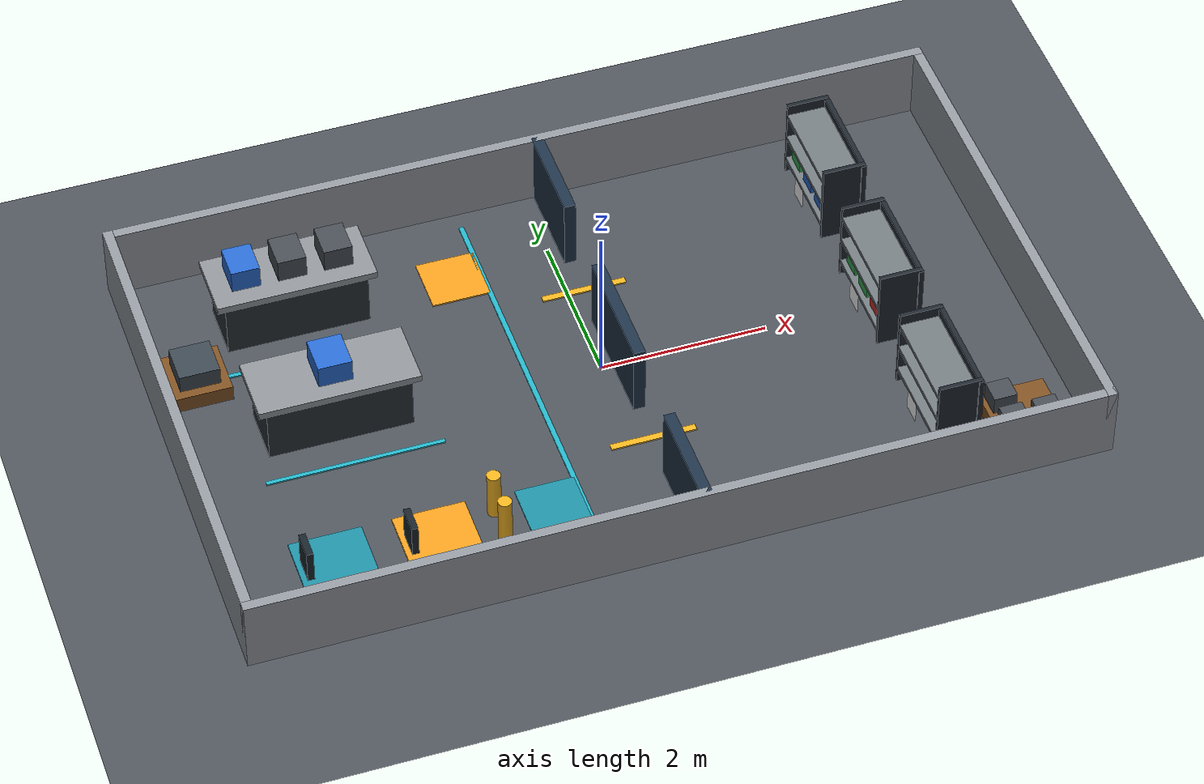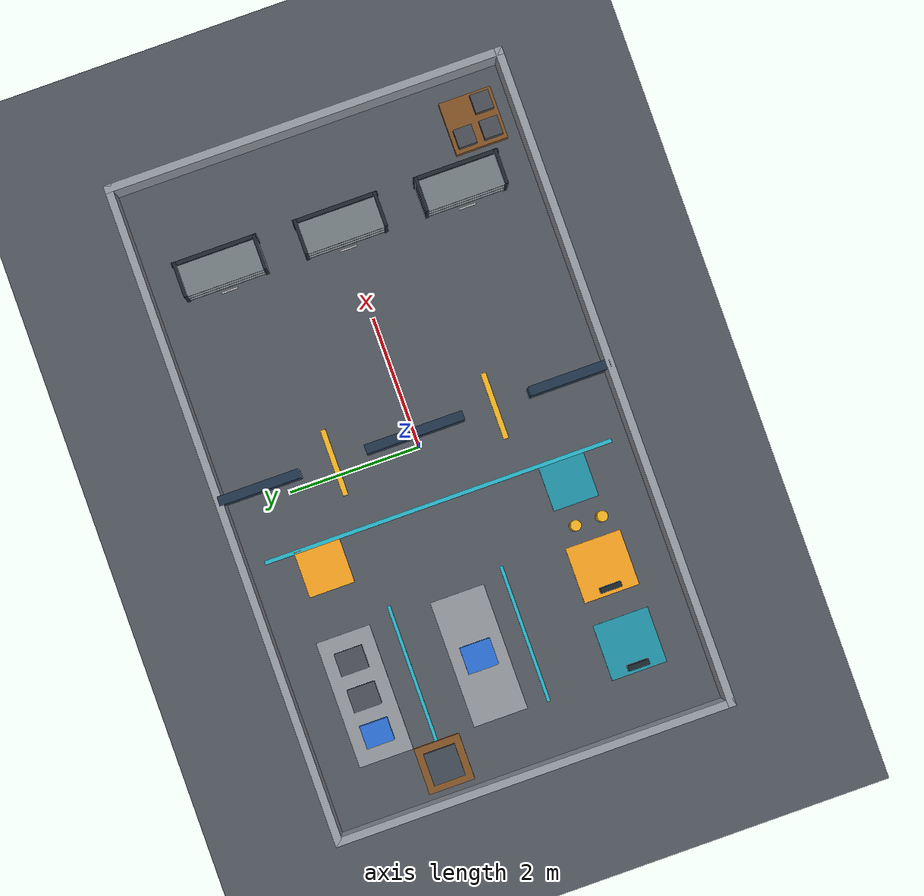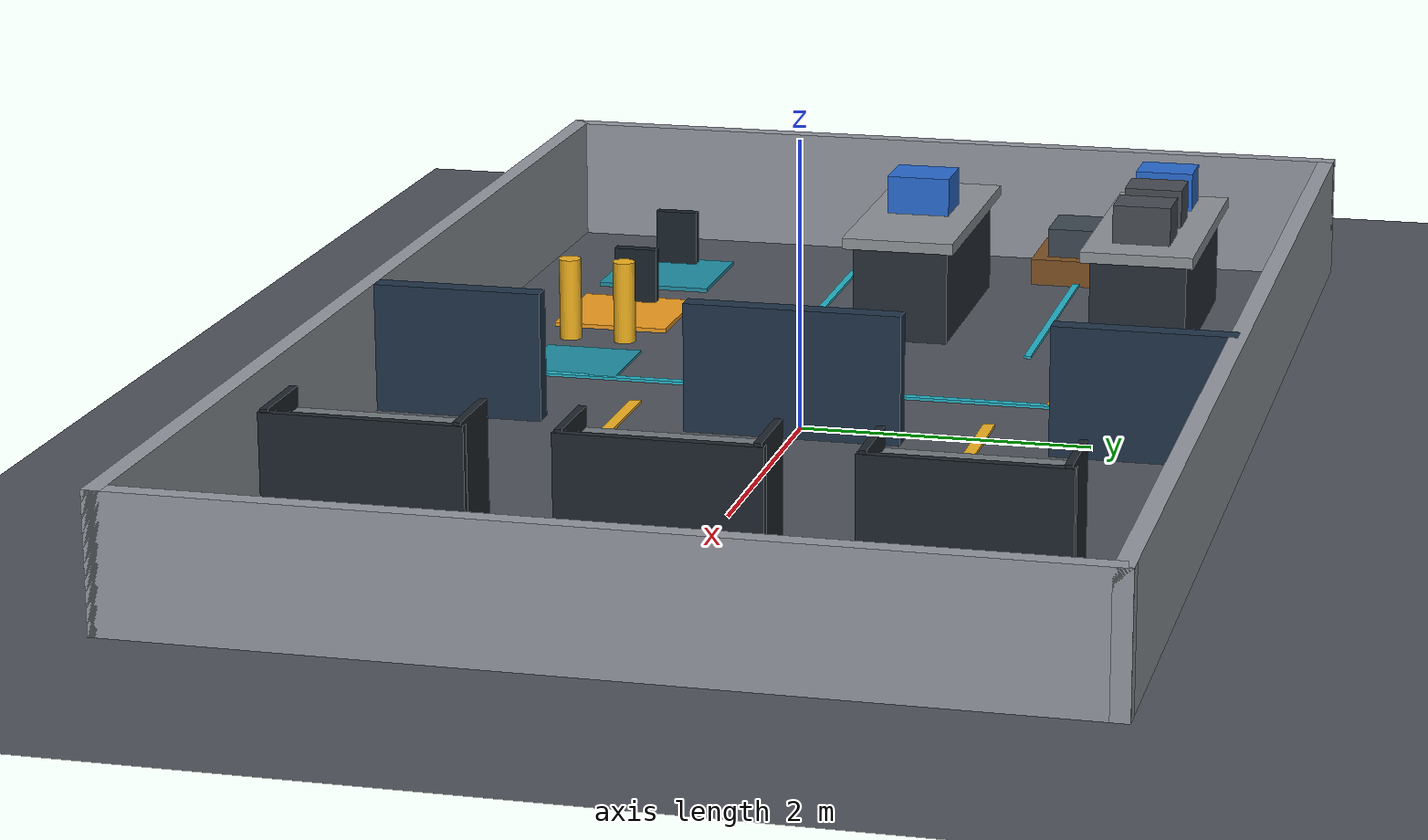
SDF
<?xml version="1.0" ?>
<sdf version="1.9">
  <world name="warehouse">

    <physics name="default_physics" type="ignored">
      <max_step_size>0.001</max_step_size>
      <real_time_factor>1.0</real_time_factor>
    </physics>

    <plugin filename="gz-sim-physics-system"
            name="gz::sim::systems::Physics"/>
    <plugin filename="gz-sim-user-commands-system"
            name="gz::sim::systems::UserCommands"/>
    <plugin filename="gz-sim-scene-broadcaster-system"
            name="gz::sim::systems::SceneBroadcaster"/>
    <plugin filename="gz-sim-sensors-system"
            name="gz::sim::systems::Sensors">
      <render_engine>ogre2</render_engine>
    </plugin>

    <scene>
      <background>0.09 0.11 0.14 1</background>
      <ambient>0.45 0.45 0.45 1</ambient>
    </scene>

    <light type="directional" name="sun">
      <pose>0 0 10 0 0 0</pose>
      <cast_shadows>true</cast_shadows>
      <diffuse>0.85 0.85 0.85 1</diffuse>
      <direction>-0.5 0.2 -0.9</direction>
    </light>

    <model name="ground_plane">
      <static>true</static>
      <link name="link">
        <collision name="collision">
          <geometry>
            <plane>
              <normal>0 0 1</normal>
              <size>10 6</size>
            </plane>
          </geometry>
        </collision>

        <visual name="visual">
          <geometry>
            <plane>
              <normal>0 0 1</normal>
              <size>10 6</size>
            </plane>
          </geometry>
          <material>
            <diffuse>0.31 0.33 0.36 1</diffuse>
          </material>
        </visual>
      </link>
    </model>

    <!-- Outer walls and centre divider with two doors -->
    <model name="warehouse_shell">
      <static>true</static>
      <link name="link">

        <collision name="north_collision">
          <pose>0 3 0.45 0 0 0</pose>
          <geometry><box><size>10.12 0.12 0.90</size></box></geometry>
        </collision>
        <visual name="north_visual">
          <pose>0 3 0.45 0 0 0</pose>
          <geometry><box><size>10.12 0.12 0.90</size></box></geometry>
          <material><diffuse>0.58 0.60 0.63 1</diffuse></material>
        </visual>

        <collision name="south_collision">
          <pose>0 -3 0.45 0 0 0</pose>
          <geometry><box><size>10.12 0.12 0.90</size></box></geometry>
        </collision>
        <visual name="south_visual">
          <pose>0 -3 0.45 0 0 0</pose>
          <geometry><box><size>10.12 0.12 0.90</size></box></geometry>
          <material><diffuse>0.58 0.60 0.63 1</diffuse></material>
        </visual>

        <collision name="east_collision">
          <pose>5 0 0.45 0 0 0</pose>
          <geometry><box><size>0.12 6.12 0.90</size></box></geometry>
        </collision>
        <visual name="east_visual">
          <pose>5 0 0.45 0 0 0</pose>
          <geometry><box><size>0.12 6.12 0.90</size></box></geometry>
          <material><diffuse>0.58 0.60 0.63 1</diffuse></material>
        </visual>

        <collision name="west_collision">
          <pose>-5 0 0.45 0 0 0</pose>
          <geometry><box><size>0.12 6.12 0.90</size></box></geometry>
        </collision>
        <visual name="west_visual">
          <pose>-5 0 0.45 0 0 0</pose>
          <geometry><box><size>0.12 6.12 0.90</size></box></geometry>
          <material><diffuse>0.58 0.60 0.63 1</diffuse></material>
        </visual>

        <collision name="divider_north_collision">
          <pose>0.20 2.38 0.45 0 0 0</pose>
          <geometry><box><size>0.14 1.24 0.90</size></box></geometry>
        </collision>
        <visual name="divider_north_visual">
          <pose>0.20 2.38 0.45 0 0 0</pose>
          <geometry><box><size>0.14 1.24 0.90</size></box></geometry>
          <material><diffuse>0.12 0.20 0.28 1</diffuse></material>
        </visual>

        <collision name="divider_centre_collision">
          <pose>0.20 0 0.45 0 0 0</pose>
          <geometry><box><size>0.14 1.50 0.90</size></box></geometry>
        </collision>
        <visual name="divider_centre_visual">
          <pose>0.20 0 0.45 0 0 0</pose>
          <geometry><box><size>0.14 1.50 0.90</size></box></geometry>
          <material><diffuse>0.12 0.20 0.28 1</diffuse></material>
        </visual>

        <collision name="divider_south_collision">
          <pose>0.20 -2.38 0.45 0 0 0</pose>
          <geometry><box><size>0.14 1.24 0.90</size></box></geometry>
        </collision>
        <visual name="divider_south_visual">
          <pose>0.20 -2.38 0.45 0 0 0</pose>
          <geometry><box><size>0.14 1.24 0.90</size></box></geometry>
          <material><diffuse>0.12 0.20 0.28 1</diffuse></material>
        </visual>
      </link>
    </model>

    <!-- Floor markings -->
    <model name="floor_markings">
      <static>true</static>
      <link name="link">
        <visual name="service_lane">
          <pose>-0.85 0 0.012 0 0 0</pose>
          <geometry><box><size>0.06 5.40 0.02</size></box></geometry>
          <material><diffuse>0.14 0.70 0.78 1</diffuse></material>
        </visual>

        <visual name="upper_door_mark">
          <pose>0.20 1.25 0.012 0 0 0</pose>
          <geometry><box><size>1.02 0.08 0.02</size></box></geometry>
          <material><diffuse>0.95 0.70 0.12 1</diffuse></material>
        </visual>

        <visual name="lower_door_mark">
          <pose>0.20 -1.25 0.012 0 0 0</pose>
          <geometry><box><size>1.02 0.08 0.02</size></box></geometry>
          <material><diffuse>0.95 0.70 0.12 1</diffuse></material>
        </visual>

        <visual name="receiving_zone_mark">
          <pose>-3.10 1.20 0.012 0 0 0</pose>
          <geometry><box><size>2.10 0.05 0.02</size></box></geometry>
          <material><diffuse>0.14 0.70 0.78 1</diffuse></material>
        </visual>

        <visual name="packout_zone_mark">
          <pose>-3.10 -0.55 0.012 0 0 0</pose>
          <geometry><box><size>2.10 0.05 0.02</size></box></geometry>
          <material><diffuse>0.14 0.70 0.78 1</diffuse></material>
        </visual>
      </link>
    </model>

    <!-- Receiving -->
    <model name="receiving_station">
      <static>true</static>
      <pose>-3.15 1.95 0 0 0 0</pose>
      <link name="link">
        <collision name="base_collision">
          <pose>0 0 0.35 0 0 0</pose>
          <geometry><box><size>1.70 0.70 0.70</size></box></geometry>
        </collision>

        <visual name="base">
          <pose>0 0 0.35 0 0 0</pose>
          <geometry><box><size>1.70 0.70 0.70</size></box></geometry>
          <material><diffuse>0.15 0.18 0.21 1</diffuse></material>
        </visual>

        <visual name="top">
          <pose>0 0 0.74 0 0 0</pose>
          <geometry><box><size>1.90 0.82 0.08</size></box></geometry>
          <material><diffuse>0.56 0.58 0.60 1</diffuse></material>
        </visual>

        <visual name="inbound_tote_blue">
          <pose>-0.55 0 0.94 0 0 0</pose>
          <geometry><box><size>0.34 0.42 0.28</size></box></geometry>
          <material><diffuse>0.16 0.42 0.82 1</diffuse></material>
        </visual>

        <visual name="inbound_tote_gray_1">
          <pose>0 0 0.94 0 0 0</pose>
          <geometry><box><size>0.34 0.42 0.28</size></box></geometry>
          <material><diffuse>0.28 0.30 0.33 1</diffuse></material>
        </visual>

        <visual name="inbound_tote_gray_2">
          <pose>0.55 0 0.94 0 0 0</pose>
          <geometry><box><size>0.34 0.42 0.28</size></box></geometry>
          <material><diffuse>0.28 0.30 0.33 1</diffuse></material>
        </visual>
      </link>
    </model>

    <model name="pallet_receiving_area">
      <static>true</static>
      <pose>-4.49 1.20 0 0 0 0</pose>
      <link name="link">
        <collision name="pallet_collision">
          <pose>0 0 0.10 0 0 0</pose>
          <geometry><box><size>0.70 0.70 0.20</size></box></geometry>
        </collision>

        <visual name="pallet">
          <pose>0 0 0.10 0 0 0</pose>
          <geometry><box><size>0.70 0.70 0.20</size></box></geometry>
          <material><diffuse>0.50 0.32 0.14 1</diffuse></material>
        </visual>

        <visual name="tote">
          <pose>0 0 0.31 0 0 0</pose>
          <geometry><box><size>0.48 0.48 0.22</size></box></geometry>
          <material><diffuse>0.24 0.28 0.32 1</diffuse></material>
        </visual>
      </link>
    </model>

    <!-- Packout -->
    <model name="packout_station">
      <static>true</static>
      <pose>-3.15 0.20 0 0 0 0</pose>
      <link name="link">
        <collision name="base_collision">
          <pose>0 0 0.35 0 0 0</pose>
          <geometry><box><size>1.70 0.70 0.70</size></box></geometry>
        </collision>

        <visual name="base">
          <pose>0 0 0.35 0 0 0</pose>
          <geometry><box><size>1.70 0.70 0.70</size></box></geometry>
          <material><diffuse>0.15 0.18 0.21 1</diffuse></material>
        </visual>

        <visual name="top">
          <pose>0 0 0.74 0 0 0</pose>
          <geometry><box><size>1.90 0.82 0.08</size></box></geometry>
          <material><diffuse>0.56 0.58 0.60 1</diffuse></material>
        </visual>

        <visual name="outbound_tote">
          <pose>0 0 0.94 0 0 0</pose>
          <geometry><box><size>0.40 0.46 0.28</size></box></geometry>
          <material><diffuse>0.16 0.42 0.82 1</diffuse></material>
        </visual>
      </link>
    </model>

    <!-- Charging bays -->
    <model name="scout_charge_bay">
      <static>true</static>
      <pose>-3.75 -1.95 0 0 0 0</pose>
      <link name="link">
        <visual name="pad">
          <pose>0 0 0.015 0 0 0</pose>
          <geometry><box><size>0.85 0.85 0.03</size></box></geometry>
          <material><diffuse>0.12 0.56 0.64 1</diffuse></material>
        </visual>

        <collision name="post_collision">
          <pose>-0.32 0 0.22 0 0 0</pose>
          <geometry><box><size>0.08 0.32 0.44</size></box></geometry>
        </collision>

        <visual name="post">
          <pose>-0.32 0 0.22 0 0 0</pose>
          <geometry><box><size>0.08 0.32 0.44</size></box></geometry>
          <material><diffuse>0.10 0.14 0.17 1</diffuse></material>
        </visual>
      </link>
    </model>

    <model name="service_charge_bay">
      <static>true</static>
      <pose>-2.55 -1.95 0 0 0 0</pose>
      <link name="link">
        <visual name="pad">
          <pose>0 0 0.015 0 0 0</pose>
          <geometry><box><size>0.85 0.85 0.03</size></box></geometry>
          <material><diffuse>0.95 0.62 0.12 1</diffuse></material>
        </visual>

        <collision name="post_collision">
          <pose>-0.32 0 0.22 0 0 0</pose>
          <geometry><box><size>0.08 0.32 0.44</size></box></geometry>
        </collision>

        <visual name="post">
          <pose>-0.32 0 0.22 0 0 0</pose>
          <geometry><box><size>0.08 0.32 0.44</size></box></geometry>
          <material><diffuse>0.10 0.14 0.17 1</diffuse></material>
        </visual>
      </link>
    </model>

    <!-- Shelf 3: two blue totes, one green tote -->
    <model name="shelf_3">
      <static>true</static>
      <pose>3.40 1.85 0 0 0 0</pose>
      <link name="link">
        <collision name="rack_collision">
          <pose>0 0 0.50 0 0 0</pose>
          <geometry><box><size>0.58 1.30 1.00</size></box></geometry>
        </collision>

        <visual name="back_panel">
          <pose>0.24 0 0.50 0 0 0</pose>
          <geometry><box><size>0.06 1.30 1.00</size></box></geometry>
          <material><diffuse>0.12 0.15 0.18 1</diffuse></material>
        </visual>

        <visual name="left_upright">
          <pose>0 -0.61 0.50 0 0 0</pose>
          <geometry><box><size>0.52 0.05 1.04</size></box></geometry>
          <material><diffuse>0.12 0.15 0.18 1</diffuse></material>
        </visual>

        <visual name="right_upright">
          <pose>0 0.61 0.50 0 0 0</pose>
          <geometry><box><size>0.52 0.05 1.04</size></box></geometry>
          <material><diffuse>0.12 0.15 0.18 1</diffuse></material>
        </visual>

        <visual name="bottom_board">
          <pose>0 0 0.18 0 0 0</pose>
          <geometry><box><size>0.52 1.20 0.05</size></box></geometry>
          <material><diffuse>0.45 0.48 0.50 1</diffuse></material>
        </visual>

        <visual name="middle_board">
          <pose>0 0 0.52 0 0 0</pose>
          <geometry><box><size>0.52 1.20 0.05</size></box></geometry>
          <material><diffuse>0.45 0.48 0.50 1</diffuse></material>
        </visual>

        <visual name="top_board">
          <pose>0 0 0.86 0 0 0</pose>
          <geometry><box><size>0.52 1.20 0.05</size></box></geometry>
          <material><diffuse>0.45 0.48 0.50 1</diffuse></material>
        </visual>

        <visual name="blue_tote_1">
          <pose>-0.06 -0.38 0.37 0 0 0</pose>
          <geometry><box><size>0.30 0.26 0.26</size></box></geometry>
          <material><diffuse>0.16 0.42 0.82 1</diffuse></material>
        </visual>

        <visual name="blue_tote_2">
          <pose>-0.06 0 0.37 0 0 0</pose>
          <geometry><box><size>0.30 0.26 0.26</size></box></geometry>
          <material><diffuse>0.16 0.42 0.82 1</diffuse></material>
        </visual>

        <visual name="green_tote">
          <pose>-0.06 0.38 0.37 0 0 0</pose>
          <geometry><box><size>0.30 0.26 0.26</size></box></geometry>
          <material><diffuse>0.20 0.66 0.32 1</diffuse></material>
        </visual>
      </link>
    </model>

    <!-- Shelf 2: one red tote, two green totes -->
    <model name="shelf_2">
      <static>true</static>
      <pose>3.40 0 0 0 0 0</pose>
      <link name="link">
        <collision name="rack_collision">
          <pose>0 0 0.50 0 0 0</pose>
          <geometry><box><size>0.58 1.30 1.00</size></box></geometry>
        </collision>

        <visual name="back_panel">
          <pose>0.24 0 0.50 0 0 0</pose>
          <geometry><box><size>0.06 1.30 1.00</size></box></geometry>
          <material><diffuse>0.12 0.15 0.18 1</diffuse></material>
        </visual>

        <visual name="left_upright">
          <pose>0 -0.61 0.50 0 0 0</pose>
          <geometry><box><size>0.52 0.05 1.04</size></box></geometry>
          <material><diffuse>0.12 0.15 0.18 1</diffuse></material>
        </visual>

        <visual name="right_upright">
          <pose>0 0.61 0.50 0 0 0</pose>
          <geometry><box><size>0.52 0.05 1.04</size></box></geometry>
          <material><diffuse>0.12 0.15 0.18 1</diffuse></material>
        </visual>

        <visual name="bottom_board">
          <pose>0 0 0.18 0 0 0</pose>
          <geometry><box><size>0.52 1.20 0.05</size></box></geometry>
          <material><diffuse>0.45 0.48 0.50 1</diffuse></material>
        </visual>

        <visual name="middle_board">
          <pose>0 0 0.52 0 0 0</pose>
          <geometry><box><size>0.52 1.20 0.05</size></box></geometry>
          <material><diffuse>0.45 0.48 0.50 1</diffuse></material>
        </visual>

        <visual name="top_board">
          <pose>0 0 0.86 0 0 0</pose>
          <geometry><box><size>0.52 1.20 0.05</size></box></geometry>
          <material><diffuse>0.45 0.48 0.50 1</diffuse></material>
        </visual>

        <visual name="red_tote">
          <pose>-0.06 -0.38 0.37 0 0 0</pose>
          <geometry><box><size>0.30 0.26 0.26</size></box></geometry>
          <material><diffuse>0.80 0.20 0.16 1</diffuse></material>
        </visual>

        <visual name="green_tote_1">
          <pose>-0.06 0 0.37 0 0 0</pose>
          <geometry><box><size>0.30 0.26 0.26</size></box></geometry>
          <material><diffuse>0.20 0.66 0.32 1</diffuse></material>
        </visual>

        <visual name="green_tote_2">
          <pose>-0.06 0.38 0.37 0 0 0</pose>
          <geometry><box><size>0.30 0.26 0.26</size></box></geometry>
          <material><diffuse>0.20 0.66 0.32 1</diffuse></material>
        </visual>
      </link>
    </model>

    <!-- Shelf 1: intentionally empty -->
    <model name="shelf_1">
      <static>true</static>
      <pose>3.40 -1.85 0 0 0 0</pose>
      <link name="link">
        <collision name="rack_collision">
          <pose>0 0 0.50 0 0 0</pose>
          <geometry><box><size>0.58 1.30 1.00</size></box></geometry>
        </collision>

        <visual name="back_panel">
          <pose>0.24 0 0.50 0 0 0</pose>
          <geometry><box><size>0.06 1.30 1.00</size></box></geometry>
          <material><diffuse>0.12 0.15 0.18 1</diffuse></material>
        </visual>

        <visual name="left_upright">
          <pose>0 -0.61 0.50 0 0 0</pose>
          <geometry><box><size>0.52 0.05 1.04</size></box></geometry>
          <material><diffuse>0.12 0.15 0.18 1</diffuse></material>
        </visual>

        <visual name="right_upright">
          <pose>0 0.61 0.50 0 0 0</pose>
          <geometry><box><size>0.52 0.05 1.04</size></box></geometry>
          <material><diffuse>0.12 0.15 0.18 1</diffuse></material>
        </visual>

        <visual name="bottom_board">
          <pose>0 0 0.18 0 0 0</pose>
          <geometry><box><size>0.52 1.20 0.05</size></box></geometry>
          <material><diffuse>0.45 0.48 0.50 1</diffuse></material>
        </visual>

        <visual name="middle_board">
          <pose>0 0 0.52 0 0 0</pose>
          <geometry><box><size>0.52 1.20 0.05</size></box></geometry>
          <material><diffuse>0.45 0.48 0.50 1</diffuse></material>
        </visual>

        <visual name="top_board">
          <pose>0 0 0.86 0 0 0</pose>
          <geometry><box><size>0.52 1.20 0.05</size></box></geometry>
          <material><diffuse>0.45 0.48 0.50 1</diffuse></material>
        </visual>
      </link>
    </model>

    <!-- Tote buffer -->
    <model name="tote_buffer">
      <static>true</static>
      <pose>4.25 -2.35 0 0 0 0</pose>
      <link name="link">
        <collision name="pallet_collision">
          <pose>0 0 0.10 0 0 0</pose>
          <geometry><box><size>0.80 0.80 0.20</size></box></geometry>
        </collision>

        <visual name="pallet">
          <pose>0 0 0.10 0 0 0</pose>
          <geometry><box><size>0.80 0.80 0.20</size></box></geometry>
          <material><diffuse>0.50 0.32 0.14 1</diffuse></material>
        </visual>

        <visual name="tote_1">
          <pose>-0.20 -0.20 0.31 0 0 0</pose>
          <geometry><box><size>0.28 0.28 0.22</size></box></geometry>
          <material><diffuse>0.28 0.30 0.33 1</diffuse></material>
        </visual>

        <visual name="tote_2">
          <pose>0.20 -0.20 0.31 0 0 0</pose>
          <geometry><box><size>0.28 0.28 0.22</size></box></geometry>
          <material><diffuse>0.28 0.30 0.33 1</diffuse></material>
        </visual>

        <visual name="tote_3">
          <pose>-0.20 0.20 0.31 0 0 0</pose>
          <geometry><box><size>0.28 0.28 0.22</size></box></geometry>
          <material><diffuse>0.28 0.30 0.33 1</diffuse></material>
        </visual>
      </link>
    </model>

    <!-- Safety bollards -->
    <model name="safety_bollard_1">
      <static>true</static>
      <pose>-1.85 -2.17 0.30 0 0 0</pose>
      <link name="link">
        <collision name="collision">
          <geometry><cylinder><radius>0.08</radius><length>0.60</length></cylinder></geometry>
        </collision>
        <visual name="visual">
          <geometry><cylinder><radius>0.08</radius><length>0.60</length></cylinder></geometry>
          <material><diffuse>0.95 0.70 0.12 1</diffuse></material>
        </visual>
      </link>
    </model>

    <model name="safety_bollard_2">
      <static>true</static>
      <pose>-1.85 -1.76 0.30 0 0 0</pose>
      <link name="link">
        <collision name="collision">
          <geometry><cylinder><radius>0.08</radius><length>0.60</length></cylinder></geometry>
        </collision>
        <visual name="visual">
          <geometry><cylinder><radius>0.08</radius><length>0.60</length></cylinder></geometry>
          <material><diffuse>0.95 0.70 0.12 1</diffuse></material>
        </visual>
      </link>
    </model>

    <!-- Temporary v3 robot spawn markings -->
    <model name="scout_start_zone">
      <static>true</static>
      <pose>-1.20 -1.90 0 0 0 0</pose>
      <link name="link">
        <visual name="visual">
          <pose>0 0 0.012 0 0 0</pose>
          <geometry><box><size>0.70 0.70 0.02</size></box></geometry>
          <material><diffuse>0.12 0.56 0.64 1</diffuse></material>
        </visual>
      </link>
    </model>

    <model name="service_start_zone">
      <static>true</static>
      <pose>-1.20 1.90 0 0 0 0</pose>
      <link name="link">
        <visual name="visual">
          <pose>0 0 0.012 0 0 0</pose>
          <geometry><box><size>0.70 0.70 0.02</size></box></geometry>
          <material><diffuse>0.95 0.62 0.12 1</diffuse></material>
        </visual>
      </link>
    </model>

    <!-- Existing inventory tags, moved to the new racks -->
    <model name="inventory_tag_10">
      <static>true</static>
      <pose>3.09 -1.85 0.16 0 0 0</pose>
      <link name="link">
        <visual name="marker">
          <pose>0 0 0 0 -1.57079632679 0</pose>
          <cast_shadows>false</cast_shadows>
          <geometry>
            <plane>
              <normal>0 0 1</normal>
              <size>0.26 0.26</size>
            </plane>
          </geometry>
          <material>
            <ambient>1 1 1 1</ambient>
            <diffuse>1 1 1 1</diffuse>
            <specular>0 0 0 1</specular>
            <pbr>
              <metal>
                <albedo_map>model://inventory_tag_10/materials/textures/inventory_tag_10.png</albedo_map>
                <roughness>0.9</roughness>
              </metal>
            </pbr>
          </material>
        </visual>
      </link>
    </model>

    <model name="inventory_tag_11">
      <static>true</static>
      <pose>3.09 0 0.16 0 0 0</pose>
      <link name="link">
        <visual name="marker">
          <pose>0 0 0 0 -1.57079632679 0</pose>
          <cast_shadows>false</cast_shadows>
          <geometry>
            <plane>
              <normal>0 0 1</normal>
              <size>0.26 0.26</size>
            </plane>
          </geometry>
          <material>
            <ambient>1 1 1 1</ambient>
            <diffuse>1 1 1 1</diffuse>
            <specular>0 0 0 1</specular>
            <pbr>
              <metal>
                <albedo_map>model://inventory_tag_11/materials/textures/inventory_tag_11.png</albedo_map>
                <roughness>0.9</roughness>
              </metal>
            </pbr>
          </material>
        </visual>
      </link>
    </model>

    <model name="inventory_tag_12">
      <static>true</static>
      <pose>3.09 1.85 0.16 0 0 0</pose>
      <link name="link">
        <visual name="marker">
          <pose>0 0 0 0 -1.57079632679 0</pose>
          <cast_shadows>false</cast_shadows>
          <geometry>
            <plane>
              <normal>0 0 1</normal>
              <size>0.26 0.26</size>
            </plane>
          </geometry>
          <material>
            <ambient>1 1 1 1</ambient>
            <diffuse>1 1 1 1</diffuse>
            <specular>0 0 0 1</specular>
            <pbr>
              <metal>
                <albedo_map>model://inventory_tag_12/materials/textures/inventory_tag_12.png</albedo_map>
                <roughness>0.9</roughness>
              </metal>
            </pbr>
          </material>
        </visual>
      </link>
    </model>

  </world>
</sdf>
